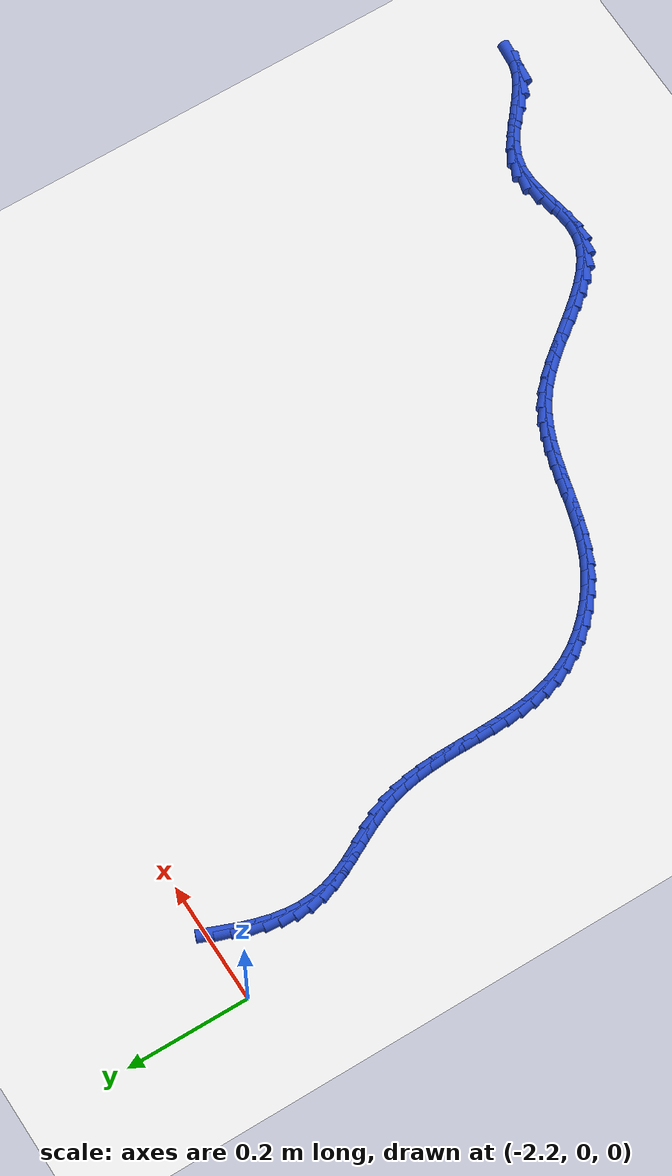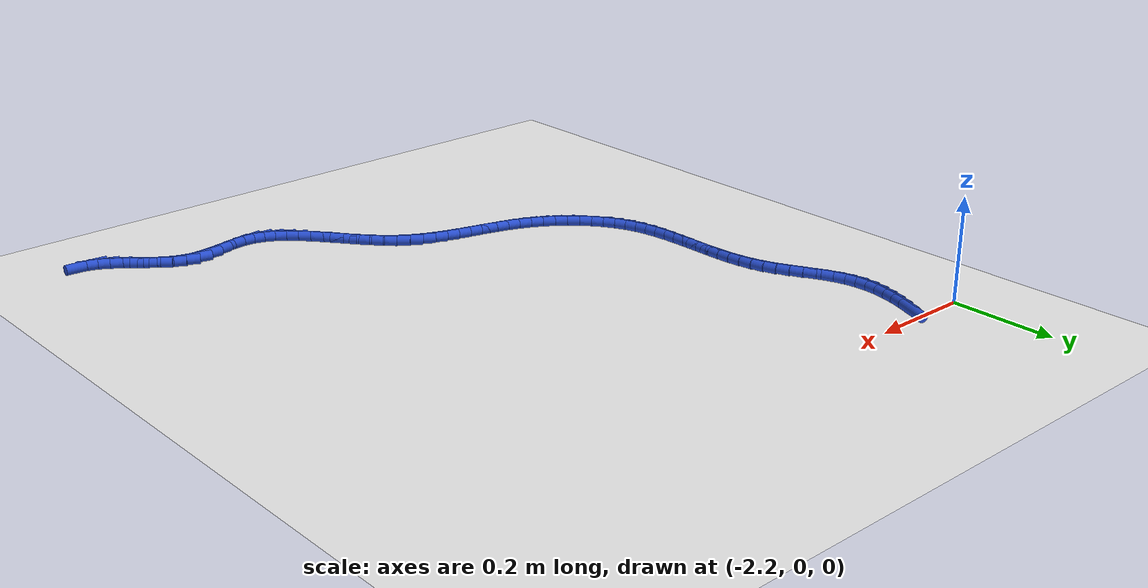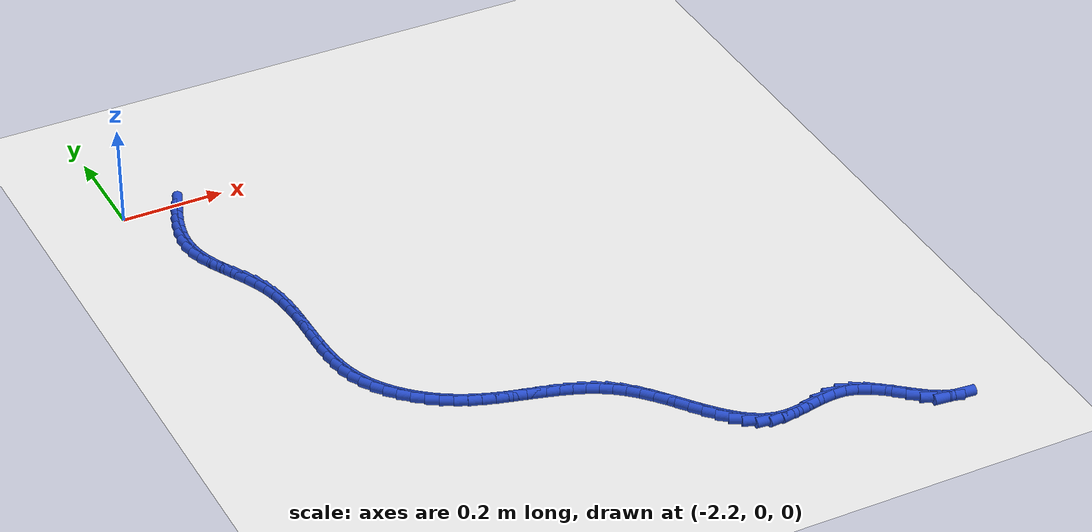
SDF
<sdf version="1.6">
 <world name="default">
  <model name="ground_plane">
   <static>1</static>
   <link name="link">
    <collision name="collision">
     <geometry><plane><normal>0 0 1</normal><size>100 100</size></plane></geometry>
     <surface><friction><ode><mu>100</mu><mu2>50</mu2></ode></friction></surface>
    </collision>
    <visual name="visual">
     <cast_shadows>0</cast_shadows>
     <geometry><plane><normal>0 0 1</normal><size>100 100</size></plane></geometry>
     <material>
      <script><uri>file://media/materials/scripts/gazebo.material</uri><name>Gazebo/WhiteGlow</name></script>
     </material>
    </visual>
   </link>
  </model>
  <model name="line">
   <link name="link_145">
    <pose>-2.0983149322985235 -0.020967346184986364 0.01 0 1.57 1.1939631913717206</pose>
    <collision name="collision">
     <geometry><cylinder><radius>0.01</radius><length>0.08</length></cylinder></geometry>
    </collision>
    <visual name="visual">
     <material>
      <script><name>Gazebo/Blue</name><uri>file://media/materials/scripts/gazebo.material</uri></script>
     </material>
     <geometry><cylinder><radius>0.01</radius><length>0.08</length></cylinder></geometry>
    </visual>
   </link>
   <link name="link_146">
    <pose>-2.1075137922083975 -0.04421174242062611 0.01 0 1.57 1.249859213566686</pose>
    <collision name="collision">
     <geometry><cylinder><radius>0.01</radius><length>0.08</length></cylinder></geometry>
    </collision>
    <visual name="visual">
     <material>
      <script><name>Gazebo/Blue</name><uri>file://media/materials/scripts/gazebo.material</uri></script>
     </material>
     <geometry><cylinder><radius>0.01</radius><length>0.08</length></cylinder></geometry>
    </visual>
   </link>
   <link name="link_147">
    <pose>-2.115209289539853 -0.067360985906182 0.01 0 1.57 1.3193521607548777</pose>
    <collision name="collision">
     <geometry><cylinder><radius>0.01</radius><length>0.08</length></cylinder></geometry>
    </collision>
    <visual name="visual">
     <material>
      <script><name>Gazebo/Blue</name><uri>file://media/materials/scripts/gazebo.material</uri></script>
     </material>
     <geometry><cylinder><radius>0.01</radius><length>0.08</length></cylinder></geometry>
    </visual>
   </link>
   <link name="link_148">
    <pose>-2.1211234698943544 -0.09038403790507404 0.01 0 1.57 1.4037785810274228</pose>
    <collision name="collision">
     <geometry><cylinder><radius>0.01</radius><length>0.08</length></cylinder></geometry>
    </collision>
    <visual name="visual">
     <material>
      <script><name>Gazebo/Blue</name><uri>file://media/materials/scripts/gazebo.material</uri></script>
     </material>
     <geometry><cylinder><radius>0.01</radius><length>0.08</length></cylinder></geometry>
    </visual>
   </link>
   <link name="link_149">
    <pose>-2.1249783788733665 -0.11324985968072224 0.01 0 1.57 1.503971504722733</pose>
    <collision name="collision">
     <geometry><cylinder><radius>0.01</radius><length>0.08</length></cylinder></geometry>
    </collision>
    <visual name="visual">
     <material>
      <script><name>Gazebo/Blue</name><uri>file://media/materials/scripts/gazebo.material</uri></script>
     </material>
     <geometry><cylinder><radius>0.01</radius><length>0.08</length></cylinder></geometry>
    </visual>
   </link>
   <link name="link_150">
    <pose>-2.126496062078353 -0.13592741249654658 0.01 0 1.57 -1.5219668406881612</pose>
    <collision name="collision">
     <geometry><cylinder><radius>0.01</radius><length>0.08</length></cylinder></geometry>
    </collision>
    <visual name="visual">
     <material>
      <script><name>Gazebo/Blue</name><uri>file://media/materials/scripts/gazebo.material</uri></script>
     </material>
     <geometry><cylinder><radius>0.01</radius><length>0.08</length></cylinder></geometry>
    </visual>
   </link>
   <link name="link_151">
    <pose>-2.1253985651107787 -0.15838565761596704 0.01 0 1.57 -1.3929995659078527</pose>
    <collision name="collision">
     <geometry><cylinder><radius>0.01</radius><length>0.08</length></cylinder></geometry>
    </collision>
    <visual name="visual">
     <material>
      <script><name>Gazebo/Blue</name><uri>file://media/materials/scripts/gazebo.material</uri></script>
     </material>
     <geometry><cylinder><radius>0.01</radius><length>0.08</length></cylinder></geometry>
    </visual>
   </link>
   <link name="link_152">
    <pose>-2.121407933572108 -0.18059355630240298 0.01 0 1.57 -1.2622790327866855</pose>
    <collision name="collision">
     <geometry><cylinder><radius>0.01</radius><length>0.08</length></cylinder></geometry>
    </collision>
    <visual name="visual">
     <material>
      <script><name>Gazebo/Blue</name><uri>file://media/materials/scripts/gazebo.material</uri></script>
     </material>
     <geometry><cylinder><radius>0.01</radius><length>0.08</length></cylinder></geometry>
    </visual>
   </link>
   <link name="link_153">
    <pose>-2.1144123160377704 -0.2025444871621891 0.01 0 1.57 -1.1650297848746813</pose>
    <collision name="collision">
     <geometry><cylinder><radius>0.01</radius><length>0.08</length></cylinder></geometry>
    </collision>
    <visual name="visual">
     <material>
      <script><name>Gazebo/Blue</name><uri>file://media/materials/scripts/gazebo.material</uri></script>
     </material>
     <geometry><cylinder><radius>0.01</radius><length>0.08</length></cylinder></geometry>
    </visual>
   </link>
   <link name="link_154">
    <pose>-2.1050480281620527 -0.2243418102889541 0.01 0 1.57 -1.1072561942654529</pose>
    <collision name="collision">
     <geometry><cylinder><radius>0.01</radius><length>0.08</length></cylinder></geometry>
    </collision>
    <visual name="visual">
     <material>
      <script><name>Gazebo/Blue</name><uri>file://media/materials/scripts/gazebo.material</uri></script>
     </material>
     <geometry><cylinder><radius>0.01</radius><length>0.08</length></cylinder></geometry>
    </visual>
   </link>
   <link name="link_155">
    <pose>-2.094161940152966 -0.24611983755652442 0.01 0 1.57 -1.0849476292529172</pose>
    <collision name="collision">
     <geometry><cylinder><radius>0.01</radius><length>0.08</length></cylinder></geometry>
    </collision>
    <visual name="visual">
     <material>
      <script><name>Gazebo/Blue</name><uri>file://media/materials/scripts/gazebo.material</uri></script>
     </material>
     <geometry><cylinder><radius>0.01</radius><length>0.08</length></cylinder></geometry>
    </visual>
   </link>
   <link name="link_156">
    <pose>-2.082600933806587 -0.2680128825421864 0.01 0 1.57 -1.0957307452462504</pose>
    <collision name="collision">
     <geometry><cylinder><radius>0.01</radius><length>0.08</length></cylinder></geometry>
    </collision>
    <visual name="visual">
     <material>
      <script><name>Gazebo/Blue</name><uri>file://media/materials/scripts/gazebo.material</uri></script>
     </material>
     <geometry><cylinder><radius>0.01</radius><length>0.08</length></cylinder></geometry>
    </visual>
   </link>
   <link name="link_157">
    <pose>-2.0712118909189896 -0.29015525882322635 0.01 0 1.57 -1.139356157012475</pose>
    <collision name="collision">
     <geometry><cylinder><radius>0.01</radius><length>0.08</length></cylinder></geometry>
    </collision>
    <visual name="visual">
     <material>
      <script><name>Gazebo/Blue</name><uri>file://media/materials/scripts/gazebo.material</uri></script>
     </material>
     <geometry><cylinder><radius>0.01</radius><length>0.08</length></cylinder></geometry>
    </visual>
   </link>
   <link name="link_158">
    <pose>-2.06084169328625 -0.3126812799769303 0.01 0 1.57 -1.2169083329038284</pose>
    <collision name="collision">
     <geometry><cylinder><radius>0.01</radius><length>0.08</length></cylinder></geometry>
    </collision>
    <visual name="visual">
     <material>
      <script><name>Gazebo/Blue</name><uri>file://media/materials/scripts/gazebo.material</uri></script>
     </material>
     <geometry><cylinder><radius>0.01</radius><length>0.08</length></cylinder></geometry>
    </visual>
   </link>
   <link name="link_159">
    <pose>-2.0523289066830177 -0.3357236344418534 0.01 0 1.57 -1.3108496433552723</pose>
    <collision name="collision">
     <geometry><cylinder><radius>0.01</radius><length>0.08</length></cylinder></geometry>
    </collision>
    <visual name="visual">
     <material>
      <script><name>Gazebo/Blue</name><uri>file://media/materials/scripts/gazebo.material</uri></script>
     </material>
     <geometry><cylinder><radius>0.01</radius><length>0.08</length></cylinder></geometry>
    </visual>
   </link>
   <link name="link_160">
    <pose>-2.0460517685517283 -0.35932505208580345 0.01 0 1.57 -1.3917714502559821</pose>
    <collision name="collision">
     <geometry><cylinder><radius>0.01</radius><length>0.08</length></cylinder></geometry>
    </collision>
    <visual name="visual">
     <material>
      <script><name>Gazebo/Blue</name><uri>file://media/materials/scripts/gazebo.material</uri></script>
     </material>
     <geometry><cylinder><radius>0.01</radius><length>0.08</length></cylinder></geometry>
    </visual>
   </link>
   <link name="link_161">
    <pose>-2.041696376909554 -0.38339300307368285 0.01 0 1.57 -1.4564966354888762</pose>
    <collision name="collision">
     <geometry><cylinder><radius>0.01</radius><length>0.08</length></cylinder></geometry>
    </collision>
    <visual name="visual">
     <material>
      <script><name>Gazebo/Blue</name><uri>file://media/materials/scripts/gazebo.material</uri></script>
     </material>
     <geometry><cylinder><radius>0.01</radius><length>0.08</length></cylinder></geometry>
    </visual>
   </link>
   <link name="link_162">
    <pose>-2.038891720307599 -0.40782379708865907 0.01 0 1.57 -1.5050775540411174</pose>
    <collision name="collision">
     <geometry><cylinder><radius>0.01</radius><length>0.08</length></cylinder></geometry>
    </collision>
    <visual name="visual">
     <material>
      <script><name>Gazebo/Blue</name><uri>file://media/materials/scripts/gazebo.material</uri></script>
     </material>
     <geometry><cylinder><radius>0.01</radius><length>0.08</length></cylinder></geometry>
    </visual>
   </link>
   <link name="link_163">
    <pose>-2.0372667872969656 -0.43251374381389907 0.01 0 1.57 -1.5379561582890697</pose>
    <collision name="collision">
     <geometry><cylinder><radius>0.01</radius><length>0.08</length></cylinder></geometry>
    </collision>
    <visual name="visual">
     <material>
      <script><name>Gazebo/Blue</name><uri>file://media/materials/scripts/gazebo.material</uri></script>
     </material>
     <geometry><cylinder><radius>0.01</radius><length>0.08</length></cylinder></geometry>
    </visual>
   </link>
   <link name="link_164">
    <pose>-2.0364505664287593 -0.4573591529325708 0.01 0 1.57 -1.555594163471245</pose>
    <collision name="collision">
     <geometry><cylinder><radius>0.01</radius><length>0.08</length></cylinder></geometry>
    </collision>
    <visual name="visual">
     <material>
      <script><name>Gazebo/Blue</name><uri>file://media/materials/scripts/gazebo.material</uri></script>
     </material>
     <geometry><cylinder><radius>0.01</radius><length>0.08</length></cylinder></geometry>
    </visual>
   </link>
   <link name="link_165">
    <pose>-2.0360720462540822 -0.4822563341278416 0.01 0 1.57 -1.5582460648649563</pose>
    <collision name="collision">
     <geometry><cylinder><radius>0.01</radius><length>0.08</length></cylinder></geometry>
    </collision>
    <visual name="visual">
     <material>
      <script><name>Gazebo/Blue</name><uri>file://media/materials/scripts/gazebo.material</uri></script>
     </material>
     <geometry><cylinder><radius>0.01</radius><length>0.08</length></cylinder></geometry>
    </visual>
   </link>
   <link name="link_166">
    <pose>-2.0357602153240393 -0.5071015970828787 0.01 0 1.57 -1.5458455818737358</pose>
    <collision name="collision">
     <geometry><cylinder><radius>0.01</radius><length>0.08</length></cylinder></geometry>
    </collision>
    <visual name="visual">
     <material>
      <script><name>Gazebo/Blue</name><uri>file://media/materials/scripts/gazebo.material</uri></script>
     </material>
     <geometry><cylinder><radius>0.01</radius><length>0.08</length></cylinder></geometry>
    </visual>
   </link>
   <link name="link_167">
    <pose>-2.0351440621897336 -0.5317912514808496 0.01 0 1.57 -1.517981469701133</pose>
    <collision name="collision">
     <geometry><cylinder><radius>0.01</radius><length>0.08</length></cylinder></geometry>
    </collision>
    <visual name="visual">
     <material>
      <script><name>Gazebo/Blue</name><uri>file://media/materials/scripts/gazebo.material</uri></script>
     </material>
     <geometry><cylinder><radius>0.01</radius><length>0.08</length></cylinder></geometry>
    </visual>
   </link>
   <link name="link_168">
    <pose>-2.0338525754022685 -0.5562216070049217 0.01 0 1.57 -1.4739631187378386</pose>
    <collision name="collision">
     <geometry><cylinder><radius>0.01</radius><length>0.08</length></cylinder></geometry>
    </collision>
    <visual name="visual">
     <material>
      <script><name>Gazebo/Blue</name><uri>file://media/materials/scripts/gazebo.material</uri></script>
     </material>
     <geometry><cylinder><radius>0.01</radius><length>0.08</length></cylinder></geometry>
    </visual>
   </link>
   <link name="link_169">
    <pose>-2.0315147435127487 -0.5802889733382619 0.01 0 1.57 -1.4130055329995133</pose>
    <collision name="collision">
     <geometry><cylinder><radius>0.01</radius><length>0.08</length></cylinder></geometry>
    </collision>
    <visual name="visual">
     <material>
      <script><name>Gazebo/Blue</name><uri>file://media/materials/scripts/gazebo.material</uri></script>
     </material>
     <geometry><cylinder><radius>0.01</radius><length>0.08</length></cylinder></geometry>
    </visual>
   </link>
   <link name="link_170">
    <pose>-2.0277595550722767 -0.6038896601640388 0.01 0 1.57 -1.334583043832388</pose>
    <collision name="collision">
     <geometry><cylinder><radius>0.01</radius><length>0.08</length></cylinder></geometry>
    </collision>
    <visual name="visual">
     <material>
      <script><name>Gazebo/Blue</name><uri>file://media/materials/scripts/gazebo.material</uri></script>
     </material>
     <geometry><cylinder><radius>0.01</radius><length>0.08</length></cylinder></geometry>
    </visual>
   </link>
   <link name="link_171">
    <pose>-2.022215998631957 -0.6269199771654194 0.01 0 1.57 -1.2389814655406342</pose>
    <collision name="collision">
     <geometry><cylinder><radius>0.01</radius><length>0.08</length></cylinder></geometry>
    </collision>
    <visual name="visual">
     <material>
      <script><name>Gazebo/Blue</name><uri>file://media/materials/scripts/gazebo.material</uri></script>
     </material>
     <geometry><cylinder><radius>0.01</radius><length>0.08</length></cylinder></geometry>
    </visual>
   </link>
   <link name="link_172">
    <pose>-2.0145130627428927 -0.6492762340255709 0.01 0 1.57 -1.129767011824784</pose>
    <collision name="collision">
     <geometry><cylinder><radius>0.01</radius><length>0.08</length></cylinder></geometry>
    </collision>
    <visual name="visual">
     <material>
      <script><name>Gazebo/Blue</name><uri>file://media/materials/scripts/gazebo.material</uri></script>
     </material>
     <geometry><cylinder><radius>0.01</radius><length>0.08</length></cylinder></geometry>
    </visual>
   </link>
   <link name="link_173">
    <pose>-2.0043289092571914 -0.6708510667501604 0.01 0 1.57 -1.0230540598017615</pose>
    <collision name="collision">
     <geometry><cylinder><radius>0.01</radius><length>0.08</length></cylinder></geometry>
    </collision>
    <visual name="visual">
     <material>
      <script><name>Gazebo/Blue</name><uri>file://media/materials/scripts/gazebo.material</uri></script>
     </material>
     <geometry><cylinder><radius>0.01</radius><length>0.08</length></cylinder></geometry>
    </visual>
   </link>
   <link name="link_174">
    <pose>-1.991727961011937 -0.6915082542565407 0.01 0 1.57 -0.924733209914185</pose>
    <collision name="collision">
     <geometry><cylinder><radius>0.01</radius><length>0.08</length></cylinder></geometry>
    </collision>
    <visual name="visual">
     <material>
      <script><name>Gazebo/Blue</name><uri>file://media/materials/scripts/gazebo.material</uri></script>
     </material>
     <geometry><cylinder><radius>0.01</radius><length>0.08</length></cylinder></geometry>
    </visual>
   </link>
   <link name="link_175">
    <pose>-1.9769571235376562 -0.7110979424020211 0.01 0 1.57 -0.8332587619633451</pose>
    <collision name="collision">
     <geometry><cylinder><radius>0.01</radius><length>0.08</length></cylinder></geometry>
    </collision>
    <visual name="visual">
     <material>
      <script><name>Gazebo/Blue</name><uri>file://media/materials/scripts/gazebo.material</uri></script>
     </material>
     <geometry><cylinder><radius>0.01</radius><length>0.08</length></cylinder></geometry>
    </visual>
   </link>
   <link name="link_176">
    <pose>-1.9602643838530547 -0.7294701962472447 0.01 0 1.57 -0.7469181284926626</pose>
    <collision name="collision">
     <geometry><cylinder><radius>0.01</radius><length>0.08</length></cylinder></geometry>
    </collision>
    <visual name="visual">
     <material>
      <script><name>Gazebo/Blue</name><uri>file://media/materials/scripts/gazebo.material</uri></script>
     </material>
     <geometry><cylinder><radius>0.01</radius><length>0.08</length></cylinder></geometry>
    </visual>
   </link>
   <link name="link_177">
    <pose>-1.941897728976836 -0.7464750808528551 0.01 0 1.57 -0.6639751210618542</pose>
    <collision name="collision">
     <geometry><cylinder><radius>0.01</radius><length>0.08</length></cylinder></geometry>
    </collision>
    <visual name="visual">
     <material>
      <script><name>Gazebo/Blue</name><uri>file://media/materials/scripts/gazebo.material</uri></script>
     </material>
     <geometry><cylinder><radius>0.01</radius><length>0.08</length></cylinder></geometry>
    </visual>
   </link>
   <link name="link_178">
    <pose>-1.9221051459277054 -0.7619626612794954 0.01 0 1.57 -0.5827015761556222</pose>
    <collision name="collision">
     <geometry><cylinder><radius>0.01</radius><length>0.08</length></cylinder></geometry>
    </collision>
    <visual name="visual">
     <material>
      <script><name>Gazebo/Blue</name><uri>file://media/materials/scripts/gazebo.material</uri></script>
     </material>
     <geometry><cylinder><radius>0.01</radius><length>0.08</length></cylinder></geometry>
    </visual>
   </link>
   <link name="link_179">
    <pose>-1.9011346217243663 -0.7757830025878084 0.01 0 1.57 -0.5013663149525327</pose>
    <collision name="collision">
     <geometry><cylinder><radius>0.01</radius><length>0.08</length></cylinder></geometry>
    </collision>
    <visual name="visual">
     <material>
      <script><name>Gazebo/Blue</name><uri>file://media/materials/scripts/gazebo.material</uri></script>
     </material>
     <geometry><cylinder><radius>0.01</radius><length>0.08</length></cylinder></geometry>
    </visual>
   </link>
   <link name="link_180">
    <pose>-1.87923414321113 -0.7877861709238547 0.01 0 1.57 -0.421559103663959</pose>
    <collision name="collision">
     <geometry><cylinder><radius>0.01</radius><length>0.08</length></cylinder></geometry>
    </collision>
    <visual name="visual">
     <material>
      <script><name>Gazebo/Blue</name><uri>file://media/materials/scripts/gazebo.material</uri></script>
     </material>
     <geometry><cylinder><radius>0.01</radius><length>0.08</length></cylinder></geometry>
    </visual>
   </link>
   <link name="link_181">
    <pose>-1.8566359586240317 -0.797920188542064 0.01 0 1.57 -0.35527433445513545</pose>
    <collision name="collision">
     <geometry><cylinder><radius>0.01</radius><length>0.08</length></cylinder></geometry>
    </collision>
    <visual name="visual">
     <material>
      <script><name>Gazebo/Blue</name><uri>file://media/materials/scripts/gazebo.material</uri></script>
     </material>
     <geometry><cylinder><radius>0.01</radius><length>0.08</length></cylinder></geometry>
    </visual>
   </link>
   <link name="link_182">
    <pose>-1.8335135218143717 -0.8064990102508747 0.01 0 1.57 -0.3061141681858838</pose>
    <collision name="collision">
     <geometry><cylinder><radius>0.01</radius><length>0.08</length></cylinder></geometry>
    </collision>
    <visual name="visual">
     <material>
      <script><name>Gazebo/Blue</name><uri>file://media/materials/scripts/gazebo.material</uri></script>
     </material>
     <geometry><cylinder><radius>0.01</radius><length>0.08</length></cylinder></geometry>
    </visual>
   </link>
   <link name="link_183">
    <pose>-1.8100265601749475 -0.8139220234734171 0.01 0 1.57 -0.2742959352124329</pose>
    <collision name="collision">
     <geometry><cylinder><radius>0.01</radius><length>0.08</length></cylinder></geometry>
    </collision>
    <visual name="visual">
     <material>
      <script><name>Gazebo/Blue</name><uri>file://media/materials/scripts/gazebo.material</uri></script>
     </material>
     <geometry><cylinder><radius>0.01</radius><length>0.08</length></cylinder></geometry>
    </visual>
   </link>
   <link name="link_184">
    <pose>-1.7863348010985582 -0.8205886156328224 0.01 0 1.57 -0.2598052607129995</pose>
    <collision name="collision">
     <geometry><cylinder><radius>0.01</radius><length>0.08</length></cylinder></geometry>
    </collision>
    <visual name="visual">
     <material>
      <script><name>Gazebo/Blue</name><uri>file://media/materials/scripts/gazebo.material</uri></script>
     </material>
     <geometry><cylinder><radius>0.01</radius><length>0.08</length></cylinder></geometry>
    </visual>
   </link>
   <link name="link_185">
    <pose>-1.7625979719780003 -0.8268981741522216 0.01 0 1.57 -0.2626827515744157</pose>
    <collision name="collision">
     <geometry><cylinder><radius>0.01</radius><length>0.08</length></cylinder></geometry>
    </collision>
    <visual name="visual">
     <material>
      <script><name>Gazebo/Blue</name><uri>file://media/materials/scripts/gazebo.material</uri></script>
     </material>
     <geometry><cylinder><radius>0.01</radius><length>0.08</length></cylinder></geometry>
    </visual>
   </link>
   <link name="link_186">
    <pose>-1.738975800206071 -0.8332500864547449 0.01 0 1.57 -0.28315778187958573</pose>
    <collision name="collision">
     <geometry><cylinder><radius>0.01</radius><length>0.08</length></cylinder></geometry>
    </collision>
    <visual name="visual">
     <material>
      <script><name>Gazebo/Blue</name><uri>file://media/materials/scripts/gazebo.material</uri></script>
     </material>
     <geometry><cylinder><radius>0.01</radius><length>0.08</length></cylinder></geometry>
    </visual>
   </link>
   <link name="link_187">
    <pose>-1.7156280131755695 -0.8400437399635239 0.01 0 1.57 -0.3216284151731953</pose>
    <collision name="collision">
     <geometry><cylinder><radius>0.01</radius><length>0.08</length></cylinder></geometry>
    </collision>
    <visual name="visual">
     <material>
      <script><name>Gazebo/Blue</name><uri>file://media/materials/scripts/gazebo.material</uri></script>
     </material>
     <geometry><cylinder><radius>0.01</radius><length>0.08</length></cylinder></geometry>
    </visual>
   </link>
   <link name="link_188">
    <pose>-1.6927143382792926 -0.8476785221016887 0.01 0 1.57 -0.3784717433023125</pose>
    <collision name="collision">
     <geometry><cylinder><radius>0.01</radius><length>0.08</length></cylinder></geometry>
    </collision>
    <visual name="visual">
     <material>
      <script><name>Gazebo/Blue</name><uri>file://media/materials/scripts/gazebo.material</uri></script>
     </material>
     <geometry><cylinder><radius>0.01</radius><length>0.08</length></cylinder></geometry>
    </visual>
   </link>
   <link name="link_189">
    <pose>-1.670394502910039 -0.8565538202923708 0.01 0 1.57 -0.4536593539364116</pose>
    <collision name="collision">
     <geometry><cylinder><radius>0.01</radius><length>0.08</length></cylinder></geometry>
    </collision>
    <visual name="visual">
     <material>
      <script><name>Gazebo/Blue</name><uri>file://media/materials/scripts/gazebo.material</uri></script>
     </material>
     <geometry><cylinder><radius>0.01</radius><length>0.08</length></cylinder></geometry>
    </visual>
   </link>
   <link name="link_190">
    <pose>-1.6488282344606064 -0.8670690219587007 0.01 0 1.57 -0.5461921598364994</pose>
    <collision name="collision">
     <geometry><cylinder><radius>0.01</radius><length>0.08</length></cylinder></geometry>
    </collision>
    <visual name="visual">
     <material>
      <script><name>Gazebo/Blue</name><uri>file://media/materials/scripts/gazebo.material</uri></script>
     </material>
     <geometry><cylinder><radius>0.01</radius><length>0.08</length></cylinder></geometry>
    </visual>
   </link>
   <link name="link_191">
    <pose>-1.6281752603237925 -0.8796235145238089 0.01 0 1.57 -0.6532527404486107</pose>
    <collision name="collision">
     <geometry><cylinder><radius>0.01</radius><length>0.08</length></cylinder></geometry>
    </collision>
    <visual name="visual">
     <material>
      <script><name>Gazebo/Blue</name><uri>file://media/materials/scripts/gazebo.material</uri></script>
     </material>
     <geometry><cylinder><radius>0.01</radius><length>0.08</length></cylinder></geometry>
    </visual>
   </link>
   <link name="link_192">
    <pose>-1.60859304986484 -0.8946107529205929 0.01 0 1.57 -0.755630906924332</pose>
    <collision name="collision">
     <geometry><cylinder><radius>0.01</radius><length>0.08</length></cylinder></geometry>
    </collision>
    <visual name="visual">
     <material>
      <script><name>Gazebo/Blue</name><uri>file://media/materials/scripts/gazebo.material</uri></script>
     </material>
     <geometry><cylinder><radius>0.01</radius><length>0.08</length></cylinder></geometry>
    </visual>
   </link>
   <link name="link_193">
    <pose>-1.5900931469515571 -0.91204080367439 0.01 0 1.57 -0.8296350413248768</pose>
    <collision name="collision">
     <geometry><cylinder><radius>0.01</radius><length>0.08</length></cylinder></geometry>
    </collision>
    <visual name="visual">
     <material>
      <script><name>Gazebo/Blue</name><uri>file://media/materials/scripts/gazebo.material</uri></script>
     </material>
     <geometry><cylinder><radius>0.01</radius><length>0.08</length></cylinder></geometry>
    </visual>
   </link>
   <link name="link_194">
    <pose>-1.572454692131608 -0.9313131426982939 0.01 0 1.57 -0.8769552999206325</pose>
    <collision name="collision">
     <geometry><cylinder><radius>0.01</radius><length>0.08</length></cylinder></geometry>
    </collision>
    <visual name="visual">
     <material>
      <script><name>Gazebo/Blue</name><uri>file://media/materials/scripts/gazebo.material</uri></script>
     </material>
     <geometry><cylinder><radius>0.01</radius><length>0.08</length></cylinder></geometry>
    </visual>
   </link>
   <link name="link_195">
    <pose>-1.5554360893423214 -0.9517727648437976 0.01 0 1.57 -0.9005205041704958</pose>
    <collision name="collision">
     <geometry><cylinder><radius>0.01</radius><length>0.08</length></cylinder></geometry>
    </collision>
    <visual name="visual">
     <material>
      <script><name>Gazebo/Blue</name><uri>file://media/materials/scripts/gazebo.material</uri></script>
     </material>
     <geometry><cylinder><radius>0.01</radius><length>0.08</length></cylinder></geometry>
    </visual>
   </link>
   <link name="link_196">
    <pose>-1.5387957425210252 -0.9727646649623934 0.01 0 1.57 -0.9016802005043052</pose>
    <collision name="collision">
     <geometry><cylinder><radius>0.01</radius><length>0.08</length></cylinder></geometry>
    </collision>
    <visual name="visual">
     <material>
      <script><name>Gazebo/Blue</name><uri>file://media/materials/scripts/gazebo.material</uri></script>
     </material>
     <geometry><cylinder><radius>0.01</radius><length>0.08</length></cylinder></geometry>
    </visual>
   </link>
   <link name="link_197">
    <pose>-1.5222920556050488 -0.9936338379055745 0.01 0 1.57 -0.8800143033344607</pose>
    <collision name="collision">
     <geometry><cylinder><radius>0.01</radius><length>0.08</length></cylinder></geometry>
    </collision>
    <visual name="visual">
     <material>
      <script><name>Gazebo/Blue</name><uri>file://media/materials/scripts/gazebo.material</uri></script>
     </material>
     <geometry><cylinder><radius>0.01</radius><length>0.08</length></cylinder></geometry>
    </visual>
   </link>
   <link name="link_198">
    <pose>-1.5056834325317192 -1.013725278524833 0.01 0 1.57 -0.8331955778309896</pose>
    <collision name="collision">
     <geometry><cylinder><radius>0.01</radius><length>0.08</length></cylinder></geometry>
    </collision>
    <visual name="visual">
     <material>
      <script><name>Gazebo/Blue</name><uri>file://media/materials/scripts/gazebo.material</uri></script>
     </material>
     <geometry><cylinder><radius>0.01</radius><length>0.08</length></cylinder></geometry>
    </visual>
   </link>
   <link name="link_199">
    <pose>-1.4887282772383656 -1.0323839816716618 0.01 0 1.57 -0.7569039108878227</pose>
    <collision name="collision">
     <geometry><cylinder><radius>0.01</radius><length>0.08</length></cylinder></geometry>
    </collision>
    <visual name="visual">
     <material>
      <script><name>Gazebo/Blue</name><uri>file://media/materials/scripts/gazebo.material</uri></script>
     </material>
     <geometry><cylinder><radius>0.01</radius><length>0.08</length></cylinder></geometry>
    </visual>
   </link>
   <link name="link_200">
    <pose>-1.4711849936623165 -1.0489549421975537 0.01 0 1.57 -0.645186903641943</pose>
    <collision name="collision">
     <geometry><cylinder><radius>0.01</radius><length>0.08</length></cylinder></geometry>
    </collision>
    <visual name="visual">
     <material>
      <script><name>Gazebo/Blue</name><uri>file://media/materials/scripts/gazebo.material</uri></script>
     </material>
     <geometry><cylinder><radius>0.01</radius><length>0.08</length></cylinder></geometry>
    </visual>
   </link>
   <link name="link_201">
    <pose>-1.4528119857409003 -1.0627831549540006 0.01 0 1.57 -0.4923626808441307</pose>
    <collision name="collision">
     <geometry><cylinder><radius>0.01</radius><length>0.08</length></cylinder></geometry>
    </collision>
    <visual name="visual">
     <material>
      <script><name>Gazebo/Blue</name><uri>file://media/materials/scripts/gazebo.material</uri></script>
     </material>
     <geometry><cylinder><radius>0.01</radius><length>0.08</length></cylinder></geometry>
    </visual>
   </link>
   <link name="link_202">
    <pose>-1.4333676574114445 -1.0732136147924962 0.01 0 1.57 -0.29809651360781303</pose>
    <collision name="collision">
     <geometry><cylinder><radius>0.01</radius><length>0.08</length></cylinder></geometry>
    </collision>
    <visual name="visual">
     <material>
      <script><name>Gazebo/Blue</name><uri>file://media/materials/scripts/gazebo.material</uri></script>
     </material>
     <geometry><cylinder><radius>0.01</radius><length>0.08</length></cylinder></geometry>
    </visual>
   </link>
   <link name="link_203">
    <pose>-1.4126104126112782 -1.079591316564533 0.01 0 1.57 -0.07784469722256804</pose>
    <collision name="collision">
     <geometry><cylinder><radius>0.01</radius><length>0.08</length></cylinder></geometry>
    </collision>
    <visual name="visual">
     <material>
      <script><name>Gazebo/Blue</name><uri>file://media/materials/scripts/gazebo.material</uri></script>
     </material>
     <geometry><cylinder><radius>0.01</radius><length>0.08</length></cylinder></geometry>
    </visual>
   </link>
   <link name="link_204">
    <pose>-1.3903190866458615 -1.0813300917127804 0.01 0 1.57 0.09280208493519086</pose>
    <collision name="collision">
     <geometry><cylinder><radius>0.01</radius><length>0.08</length></cylinder></geometry>
    </collision>
    <visual name="visual">
     <material>
      <script><name>Gazebo/Blue</name><uri>file://media/materials/scripts/gazebo.material</uri></script>
     </material>
     <geometry><cylinder><radius>0.01</radius><length>0.08</length></cylinder></geometry>
    </visual>
   </link>
   <link name="link_205">
    <pose>-1.3666535539847031 -1.0791275543903407 0.01 0 1.57 0.17382567050888437</pose>
    <collision name="collision">
     <geometry><cylinder><radius>0.01</radius><length>0.08</length></cylinder></geometry>
    </collision>
    <visual name="visual">
     <material>
      <script><name>Gazebo/Blue</name><uri>file://media/materials/scripts/gazebo.material</uri></script>
     </material>
     <geometry><cylinder><radius>0.01</radius><length>0.08</length></cylinder></geometry>
    </visual>
   </link>
   <link name="link_206">
    <pose>-1.3421110505301446 -1.0748179441040835 0.01 0 1.57 0.18039663686973909</pose>
    <collision name="collision">
     <geometry><cylinder><radius>0.01</radius><length>0.08</length></cylinder></geometry>
    </collision>
    <visual name="visual">
     <material>
      <script><name>Gazebo/Blue</name><uri>file://media/materials/scripts/gazebo.material</uri></script>
     </material>
     <geometry><cylinder><radius>0.01</radius><length>0.08</length></cylinder></geometry>
    </visual>
   </link>
   <link name="link_207">
    <pose>-1.3172004673965365 -1.0702747686594583 0.01 0 1.57 0.1166763504856782</pose>
    <collision name="collision">
     <geometry><cylinder><radius>0.01</radius><length>0.08</length></cylinder></geometry>
    </collision>
    <visual name="visual">
     <material>
      <script><name>Gazebo/Blue</name><uri>file://media/materials/scripts/gazebo.material</uri></script>
     </material>
     <geometry><cylinder><radius>0.01</radius><length>0.08</length></cylinder></geometry>
    </visual>
   </link>
   <link name="link_208">
    <pose>-1.292430695698229 -1.067371535861912 0.01 0 1.57 -0.025293771410779944</pose>
    <collision name="collision">
     <geometry><cylinder><radius>0.01</radius><length>0.08</length></cylinder></geometry>
    </collision>
    <visual name="visual">
     <material>
      <script><name>Gazebo/Blue</name><uri>file://media/materials/scripts/gazebo.material</uri></script>
     </material>
     <geometry><cylinder><radius>0.01</radius><length>0.08</length></cylinder></geometry>
    </visual>
   </link>
   <link name="link_209">
    <pose>-1.2683106265495732 -1.0679817535168952 0.01 0 1.57 -0.24822395211444273</pose>
    <collision name="collision">
     <geometry><cylinder><radius>0.01</radius><length>0.08</length></cylinder></geometry>
    </collision>
    <visual name="visual">
     <material>
      <script><name>Gazebo/Blue</name><uri>file://media/materials/scripts/gazebo.material</uri></script>
     </material>
     <geometry><cylinder><radius>0.01</radius><length>0.08</length></cylinder></geometry>
    </visual>
   </link>
   <link name="link_210">
    <pose>-1.2453115722808337 -1.0738108852445065 0.01 0 1.57 -0.4582115405610607</pose>
    <collision name="collision">
     <geometry><cylinder><radius>0.01</radius><length>0.08</length></cylinder></geometry>
    </collision>
    <visual name="visual">
     <material>
      <script><name>Gazebo/Blue</name><uri>file://media/materials/scripts/gazebo.material</uri></script>
     </material>
     <geometry><cylinder><radius>0.01</radius><length>0.08</length></cylinder></geometry>
    </visual>
   </link>
   <link name="link_211">
    <pose>-1.22346270814557 -1.084587253395494 0.01 0 1.57 -0.5943682992315866</pose>
    <collision name="collision">
     <geometry><cylinder><radius>0.01</radius><length>0.08</length></cylinder></geometry>
    </collision>
    <visual name="visual">
     <material>
      <script><name>Gazebo/Blue</name><uri>file://media/materials/scripts/gazebo.material</uri></script>
     </material>
     <geometry><cylinder><radius>0.01</radius><length>0.08</length></cylinder></geometry>
    </visual>
   </link>
   <link name="link_212">
    <pose>-1.2025054305489027 -1.0987522956242746 0.01 0 1.57 -0.6659766739924946</pose>
    <collision name="collision">
     <geometry><cylinder><radius>0.01</radius><length>0.08</length></cylinder></geometry>
    </collision>
    <visual name="visual">
     <material>
      <script><name>Gazebo/Blue</name><uri>file://media/materials/scripts/gazebo.material</uri></script>
     </material>
     <geometry><cylinder><radius>0.01</radius><length>0.08</length></cylinder></geometry>
    </visual>
   </link>
   <link name="link_213">
    <pose>-1.1821762246637162 -1.1147254876181505 0.01 0 1.57 -0.6816989510449406</pose>
    <collision name="collision">
     <geometry><cylinder><radius>0.01</radius><length>0.08</length></cylinder></geometry>
    </collision>
    <visual name="visual">
     <material>
      <script><name>Gazebo/Blue</name><uri>file://media/materials/scripts/gazebo.material</uri></script>
     </material>
     <geometry><cylinder><radius>0.01</radius><length>0.08</length></cylinder></geometry>
    </visual>
   </link>
   <link name="link_214">
    <pose>-1.1622115756628955 -1.1309263050644254 0.01 0 1.57 -0.6418950665923764</pose>
    <collision name="collision">
     <geometry><cylinder><radius>0.01</radius><length>0.08</length></cylinder></geometry>
    </collision>
    <visual name="visual">
     <material>
      <script><name>Gazebo/Blue</name><uri>file://media/materials/scripts/gazebo.material</uri></script>
     </material>
     <geometry><cylinder><radius>0.01</radius><length>0.08</length></cylinder></geometry>
    </visual>
   </link>
   <link name="link_215">
    <pose>-1.1423479687193243 -1.1457742236504005 0.01 0 1.57 -0.5366972269264083</pose>
    <collision name="collision">
     <geometry><cylinder><radius>0.01</radius><length>0.08</length></cylinder></geometry>
    </collision>
    <visual name="visual">
     <material>
      <script><name>Gazebo/Blue</name><uri>file://media/materials/scripts/gazebo.material</uri></script>
     </material>
     <geometry><cylinder><radius>0.01</radius><length>0.08</length></cylinder></geometry>
    </visual>
   </link>
   <link name="link_216">
    <pose>-1.122321889005888 -1.157688719063379 0.01 0 1.57 -0.3472978516906475</pose>
    <collision name="collision">
     <geometry><cylinder><radius>0.01</radius><length>0.08</length></cylinder></geometry>
    </collision>
    <visual name="visual">
     <material>
      <script><name>Gazebo/Blue</name><uri>file://media/materials/scripts/gazebo.material</uri></script>
     </material>
     <geometry><cylinder><radius>0.01</radius><length>0.08</length></cylinder></geometry>
    </visual>
   </link>
   <link name="link_217">
    <pose>-1.1018701637931432 -1.1650916158578402 0.01 0 1.57 -0.0930219531661938</pose>
    <collision name="collision">
     <geometry><cylinder><radius>0.01</radius><length>0.08</length></cylinder></geometry>
    </collision>
    <visual name="visual">
     <material>
      <script><name>Gazebo/Blue</name><uri>file://media/materials/scripts/gazebo.material</uri></script>
     </material>
     <geometry><cylinder><radius>0.01</radius><length>0.08</length></cylinder></geometry>
    </visual>
   </link>
  </model>
 </world>
</sdf>
